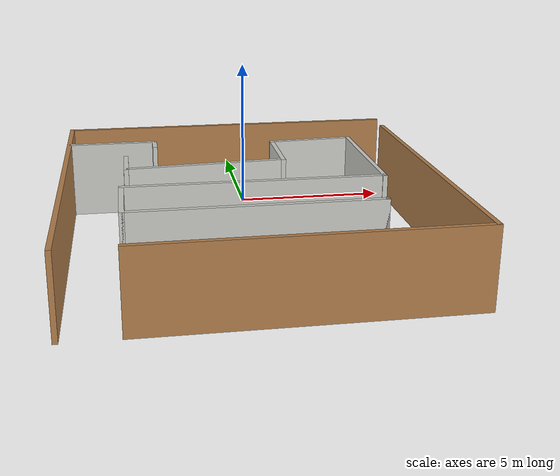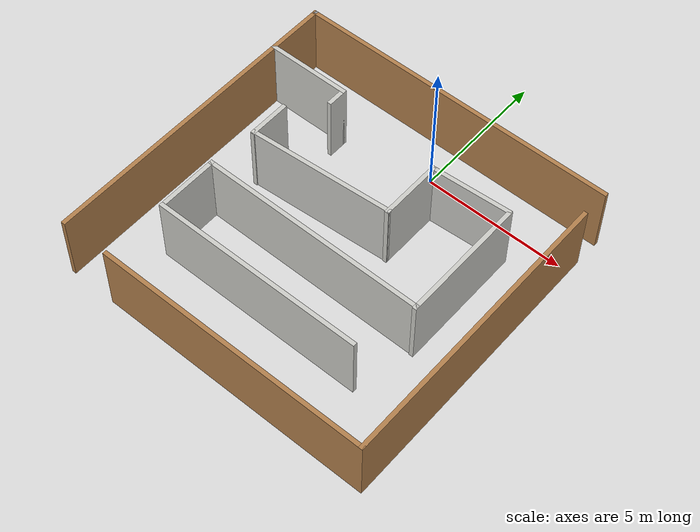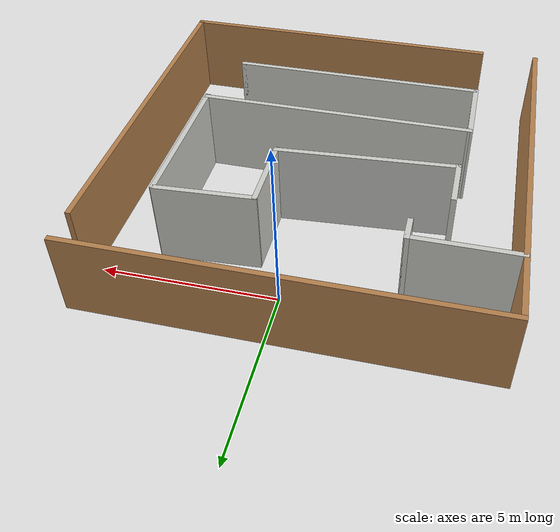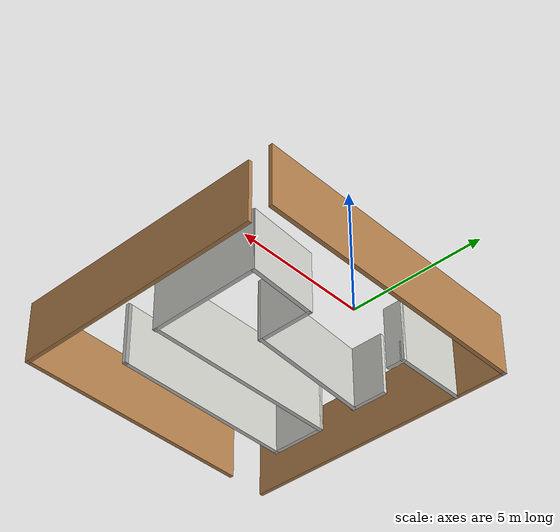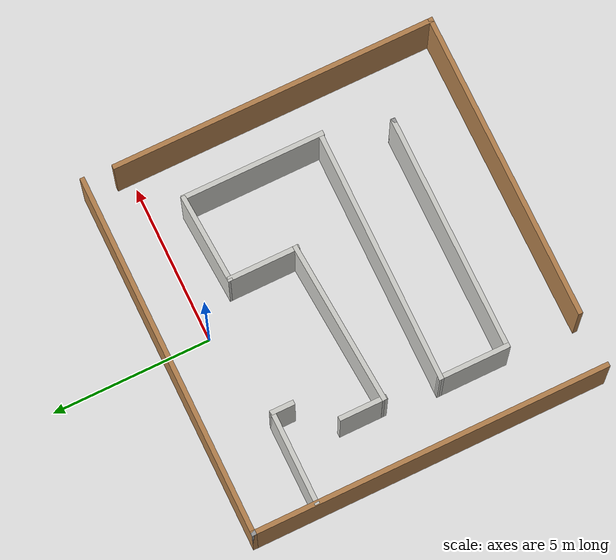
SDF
<?xml version='1.0'?>
<sdf version='1.7'>
  <model name='small_maze'>
    <pose>-0.36535 -4.12595 0 0 -0 0</pose>
    <link name='Wall_16'>
      <collision name='Wall_16_Collision'>
        <geometry>
          <box>
            <size>11.5 0.15 2.5</size>
          </box>
        </geometry>
        <pose>0 0 1.25 0 -0 0</pose>
      </collision>
      <visual name='Wall_16_Visual'>
        <pose>0 0 1.25 0 -0 0</pose>
        <geometry>
          <box>
            <size>11.5 0.15 2.5</size>
          </box>
        </geometry>
        <material>
          <script>
            <uri>file://media/materials/scripts/gazebo.material</uri>
            <name>Gazebo/Wood</name>
          </script>
          <ambient>1 1 1 1</ambient>
        </material>
        <meta>
          <layer>0</layer>
        </meta>
      </visual>
      <pose>0 5.55 0 0 -0 3.14159</pose>
    </link>
    <link name='Wall_17'>
      <collision name='Wall_17_Collision'>
        <geometry>
          <box>
            <size>0.15 0.15 2.5</size>
          </box>
        </geometry>
        <pose>0 0 1.25 0 -0 0</pose>
      </collision>
      <visual name='Wall_17_Visual'>
        <pose>0 0 1.25 0 -0 0</pose>
        <geometry>
          <box>
            <size>0.15 0.15 2.5</size>
          </box>
        </geometry>
        <material>
          <script>
            <uri>file://media/materials/scripts/gazebo.material</uri>
            <name>Gazebo/Grey</name>
          </script>
          <ambient>1 1 1 1</ambient>
        </material>
        <meta>
          <layer>0</layer>
        </meta>
      </visual>
      <pose>-5.675 5.55 0 0 -0 0</pose>
    </link>
    <link name='Wall_18'>
      <collision name='Wall_18_Collision'>
        <geometry>
          <box>
            <size>11.25 0.15 2.5</size>
          </box>
        </geometry>
        <pose>0 0 1.25 0 -0 0</pose>
      </collision>
      <visual name='Wall_18_Visual'>
        <pose>0 0 1.25 0 -0 0</pose>
        <geometry>
          <box>
            <size>11.25 0.15 2.5</size>
          </box>
        </geometry>
        <material>
          <script>
            <uri>file://media/materials/scripts/gazebo.material</uri>
            <name>Gazebo/Wood</name>
          </script>
          <ambient>1 1 1 1</ambient>
        </material>
        <meta>
          <layer>0</layer>
        </meta>
      </visual>
      <pose>-5.675 0 0 0 -0 -1.5708</pose>
    </link>
    <link name='Wall_20'>
      <collision name='Wall_20_Collision'>
        <geometry>
          <box>
            <size>10.25 0.15 2.5</size>
          </box>
        </geometry>
        <pose>0 0 1.25 0 -0 0</pose>
      </collision>
      <visual name='Wall_20_Visual'>
        <pose>0 0 1.25 0 -0 0</pose>
        <geometry>
          <box>
            <size>10.25 0.15 2.5</size>
          </box>
        </geometry>
        <material>
          <script>
            <uri>file://media/materials/scripts/gazebo.material</uri>
            <name>Gazebo/Wood</name>
          </script>
          <ambient>1 1 1 1</ambient>
        </material>
        <meta>
          <layer>0</layer>
        </meta>
      </visual>
      <pose>5.64798 -0.5 0 0 -0 1.5708</pose>
    </link>
    <link name='Wall_25'>
      <collision name='Wall_25_Collision'>
        <geometry>
          <box>
            <size>1.5 0.15 2.5</size>
          </box>
        </geometry>
        <pose>0 0 1.25 0 -0 0</pose>
      </collision>
      <visual name='Wall_25_Visual'>
        <pose>0 0 1.25 0 -0 0</pose>
        <geometry>
          <box>
            <size>1.5 0.15 2.5</size>
          </box>
        </geometry>
        <material>
          <script>
            <uri>file://media/materials/scripts/gazebo.material</uri>
            <name>Gazebo/CeilingTiled</name>
          </script>
          <ambient>1 1 1 1</ambient>
        </material>
        <meta>
          <layer>0</layer>
        </meta>
      </visual>
      <pose>-3.78664 1.2164 0 0 -0 -1.5708</pose>
    </link>
    <link name='Wall_26'>
      <collision name='Wall_26_Collision'>
        <geometry>
          <box>
            <size>5.17173 0.15 2.5</size>
          </box>
        </geometry>
        <pose>0 0 1.25 0 -0 0</pose>
      </collision>
      <visual name='Wall_26_Visual'>
        <pose>0 0 1.25 0 -0 0</pose>
        <geometry>
          <box>
            <size>5.17173 0.15 2.5</size>
          </box>
        </geometry>
        <material>
          <script>
            <uri>file://media/materials/scripts/gazebo.material</uri>
            <name>Gazebo/CeilingTiled</name>
          </script>
          <ambient>1 1 1 1</ambient>
        </material>
        <meta>
          <layer>0</layer>
        </meta>
      </visual>
      <pose>-1.28174 0.740897 0 0 -0 0.068916</pose>
    </link>
    <link name='Wall_27'>
      <collision name='Wall_27_Collision'>
        <geometry>
          <box>
            <size>2.25 0.15 2.5</size>
          </box>
        </geometry>
        <pose>0 0 1.25 0 -0 0</pose>
      </collision>
      <visual name='Wall_27_Visual'>
        <pose>0 0 1.25 0 -0 0</pose>
        <geometry>
          <box>
            <size>2.25 0.15 2.5</size>
          </box>
        </geometry>
        <material>
          <script>
            <uri>file://media/materials/scripts/gazebo.material</uri>
            <name>Gazebo/CeilingTiled</name>
          </script>
          <ambient>1 1 1 1</ambient>
        </material>
        <meta>
          <layer>0</layer>
        </meta>
      </visual>
      <pose>1.22317 1.9372 0 0 -0 1.5708</pose>
    </link>
    <link name='Wall_28'>
      <collision name='Wall_28_Collision'>
        <geometry>
          <box>
            <size>2.86168 0.15 2.5</size>
          </box>
        </geometry>
        <pose>0 0 1.25 0 -0 0</pose>
      </collision>
      <visual name='Wall_28_Visual'>
        <pose>0 0 1.25 0 -0 0</pose>
        <geometry>
          <box>
            <size>2.86168 0.15 2.5</size>
          </box>
        </geometry>
        <material>
          <script>
            <uri>file://media/materials/scripts/gazebo.material</uri>
            <name>Gazebo/CeilingTiled</name>
          </script>
          <ambient>1 1 1 1</ambient>
        </material>
        <meta>
          <layer>0</layer>
        </meta>
      </visual>
      <pose>2.57666 3.09357 0 0 -0 0.058871</pose>
    </link>
    <link name='Wall_29'>
      <collision name='Wall_29_Collision'>
        <geometry>
          <box>
            <size>4.5 0.15 2.5</size>
          </box>
        </geometry>
        <pose>0 0 1.25 0 -0 0</pose>
      </collision>
      <visual name='Wall_29_Visual'>
        <pose>0 0 1.25 0 -0 0</pose>
        <geometry>
          <box>
            <size>4.5 0.15 2.5</size>
          </box>
        </geometry>
        <material>
          <script>
            <uri>file://media/materials/scripts/gazebo.material</uri>
            <name>Gazebo/CeilingTiled</name>
          </script>
          <ambient>1 1 1 1</ambient>
        </material>
        <meta>
          <layer>0</layer>
        </meta>
      </visual>
      <pose>3.95675 0.971745 0 0 -0 -1.5708</pose>
    </link>
    <link name='Wall_30'>
      <collision name='Wall_30_Collision'>
        <geometry>
          <box>
            <size>8.03221 0.15 2.5</size>
          </box>
        </geometry>
        <pose>0 0 1.25 0 -0 0</pose>
      </collision>
      <visual name='Wall_30_Visual'>
        <pose>0 0 1.25 0 -0 0</pose>
        <geometry>
          <box>
            <size>8.03221 0.15 2.5</size>
          </box>
        </geometry>
        <material>
          <script>
            <uri>file://media/materials/scripts/gazebo.material</uri>
            <name>Gazebo/CeilingTiled</name>
          </script>
          <ambient>1 1 1 1</ambient>
        </material>
        <meta>
          <layer>0</layer>
        </meta>
      </visual>
      <pose>-0.010937 -1.16333 0 0 -0 3.13821</pose>
    </link>
    <link name='Wall_31'>
      <collision name='Wall_31_Collision'>
        <geometry>
          <box>
            <size>2.25 0.15 2.5</size>
          </box>
        </geometry>
        <pose>0 0 1.25 0 -0 0</pose>
      </collision>
      <visual name='Wall_31_Visual'>
        <pose>0 0 1.25 0 -0 0</pose>
        <geometry>
          <box>
            <size>2.25 0.15 2.5</size>
          </box>
        </geometry>
        <material>
          <script>
            <uri>file://media/materials/scripts/gazebo.material</uri>
            <name>Gazebo/CeilingTiled</name>
          </script>
          <ambient>1 1 1 1</ambient>
        </material>
        <meta>
          <layer>0</layer>
        </meta>
      </visual>
      <pose>-3.95202 -2.2 0 0 -0 -1.5708</pose>
    </link>
    <link name='Wall_32'>
      <collision name='Wall_32_Collision'>
        <geometry>
          <box>
            <size>7.5 0.15 2.5</size>
          </box>
        </geometry>
        <pose>0 0 1.25 0 -0 0</pose>
      </collision>
      <visual name='Wall_32_Visual'>
        <pose>0 0 1.25 0 -0 0</pose>
        <geometry>
          <box>
            <size>7.5 0.15 2.5</size>
          </box>
        </geometry>
        <material>
          <script>
            <uri>file://media/materials/scripts/gazebo.material</uri>
            <name>Gazebo/CeilingTiled</name>
          </script>
          <ambient>1 1 1 1</ambient>
        </material>
        <meta>
          <layer>0</layer>
        </meta>
      </visual>
      <pose>-0.277018 -3.25 0 0 -0 0</pose>
    </link>
    <link name='Wall_33'>
      <collision name='Wall_33_Collision'>
        <geometry>
          <box>
            <size>0.15 0.15 2.5</size>
          </box>
        </geometry>
        <pose>0 0 1.25 0 -0 0</pose>
      </collision>
      <visual name='Wall_33_Visual'>
        <pose>0 0 1.25 0 -0 0</pose>
        <geometry>
          <box>
            <size>0.15 0.15 2.5</size>
          </box>
        </geometry>
        <material>
          <script>
            <uri>file://media/materials/scripts/gazebo.material</uri>
            <name>Gazebo/Grey</name>
          </script>
          <ambient>1 1 1 1</ambient>
        </material>
        <meta>
          <layer>0</layer>
        </meta>
      </visual>
      <pose>3.39798 -3.25 0 0 -0 0</pose>
    </link>
    <link name='Wall_35'>
      <collision name='Wall_35_Collision'>
        <geometry>
          <box>
            <size>3 0.15 2.5</size>
          </box>
        </geometry>
        <pose>0 0 1.25 0 -0 0</pose>
      </collision>
      <visual name='Wall_35_Visual'>
        <pose>0 0 1.25 0 -0 0</pose>
        <geometry>
          <box>
            <size>3 0.15 2.5</size>
          </box>
        </geometry>
        <material>
          <script>
            <uri>file://media/materials/scripts/gazebo.material</uri>
            <name>Gazebo/CeilingTiled</name>
          </script>
          <ambient>1 1 1 1</ambient>
        </material>
        <meta>
          <layer>0</layer>
        </meta>
      </visual>
      <pose>-4.22405 3.57609 0 0 -0 0</pose>
    </link>
    <link name='Wall_40'>
      <collision name='Wall_40_Collision'>
        <geometry>
          <box>
            <size>0.75 0.15 2.5</size>
          </box>
        </geometry>
        <pose>0 0 1.25 0 -0 0</pose>
      </collision>
      <visual name='Wall_40_Visual'>
        <pose>0 0 1.25 0 -0 0</pose>
        <geometry>
          <box>
            <size>0.75 0.15 2.5</size>
          </box>
        </geometry>
        <material>
          <script>
            <uri>file://media/materials/scripts/gazebo.material</uri>
            <name>Gazebo/CeilingTiled</name>
          </script>
          <ambient>1 1 1 1</ambient>
        </material>
        <meta>
          <layer>0</layer>
        </meta>
      </visual>
      <pose>-2.79905 3.27609 0 0 -0 -1.5708</pose>
    </link>
    <link name='Wall_9'>
      <collision name='Wall_9_Collision'>
        <geometry>
          <box>
            <size>9.75 0.15 2.5</size>
          </box>
        </geometry>
        <pose>0 0 1.25 0 -0 0</pose>
      </collision>
      <visual name='Wall_9_Visual'>
        <pose>0 0 1.25 0 -0 0</pose>
        <geometry>
          <box>
            <size>9.75 0.15 2.5</size>
          </box>
        </geometry>
        <material>
          <script>
            <uri>file://media/materials/scripts/gazebo.material</uri>
            <name>Gazebo/Wood</name>
          </script>
          <ambient>1 1 1 1</ambient>
        </material>
        <meta>
          <layer>0</layer>
        </meta>
      </visual>
      <pose>0.847982 -5.55 0 0 -0 3.14159</pose>
    </link>
    <static>1</static>
  </model>
</sdf>
